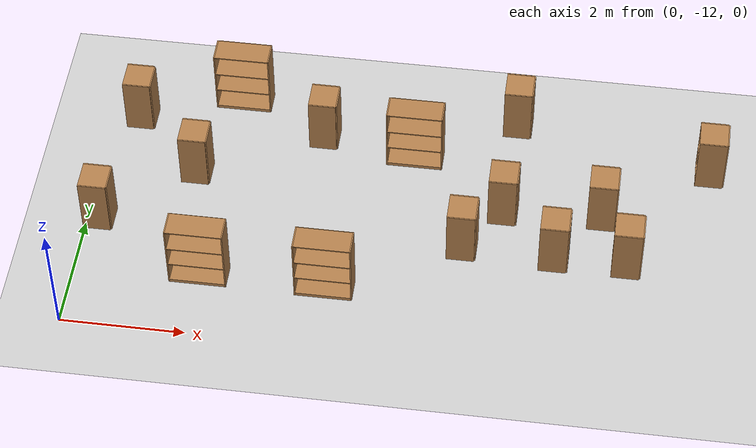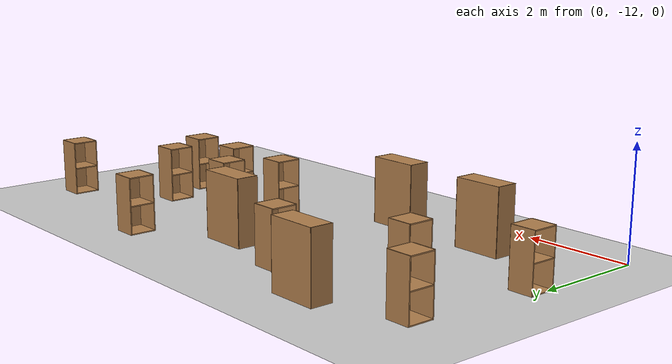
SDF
<sdf version="1.6">
 <world name="default">
  <model name="ground_plane">
   <static>1</static>
   <link name="link">
    <collision name="collision">
     <geometry><plane><normal>0 0 1</normal><size>100 100</size></plane></geometry>
     <surface><friction><ode><mu>100</mu><mu2>50</mu2></ode></friction></surface>
    </collision>
    <visual name="visual">
     <cast_shadows>0</cast_shadows>
     <geometry><plane><normal>0 0 1</normal><size>100 100</size></plane></geometry>
     <material>
      <script><uri>file://media/materials/scripts/gazebo.material</uri><name>Gazebo/Grey</name></script>
     </material>
    </visual>
   </link>
  </model>
  <model name="cabinet_3">
   <static>1</static>
   <link name="cabinet_bottom_plate">
    <inertial>
     <pose>0 0 -1 0 -0 0</pose>
     <inertia><ixx>2.05</ixx><ixy>0</ixy><ixz>0</ixz><iyy>2.05</iyy><iyz>0</iyz><izz>2.05</izz></inertia>
     <mass>25</mass>
    </inertial>
    <collision name="cabinet_bottom_plate_geom">
     <pose>0 0 0.01 0 -0 0</pose>
     <geometry><box><size>0.45 0.45 0.02</size></box></geometry>
    </collision>
    <visual name="cabinet_bottom_plate_geom_visual">
     <pose>0 0 0.01 0 -0 0</pose>
     <geometry><box><size>0.45 0.45 0.02</size></box></geometry>
     <material>
      <script><uri>file://media/materials/scripts/gazebo.material</uri><name>Gazebo/Wood</name></script>
     </material>
    </visual>
    <collision name="cabinet_bottom_plate_geom_cabinet_back_plate">
     <pose>0.235 0 0.51 0 -0 0</pose>
     <geometry><box><size>0.02 0.45 1.02</size></box></geometry>
    </collision>
    <visual name="cabinet_bottom_plate_geom_cabinet_back_plate_visual">
     <pose>0.235 0 0.51 0 -0 0</pose>
     <geometry><box><size>0.02 0.45 1.02</size></box></geometry>
     <material>
      <script><uri>file://media/materials/scripts/gazebo.material</uri><name>Gazebo/Wood</name></script>
     </material>
    </visual>
    <collision name="cabinet_bottom_plate_geom_cabinet_left_plate">
     <pose>0 0.235 0.51 0 -0 0</pose>
     <geometry><box><size>0.45 0.02 1.02</size></box></geometry>
    </collision>
    <visual name="cabinet_bottom_plate_geom_cabinet_left_plate_visual">
     <pose>0 0.235 0.51 0 -0 0</pose>
     <geometry><box><size>0.45 0.02 1.02</size></box></geometry>
     <material>
      <script><uri>file://media/materials/scripts/gazebo.material</uri><name>Gazebo/Wood</name></script>
     </material>
    </visual>
    <collision name="cabinet_bottom_plate_geom_cabinet_middle_plate">
     <pose>0 0 0.51 0 -0 0</pose>
     <geometry><box><size>0.45 0.45 0.02</size></box></geometry>
    </collision>
    <visual name="cabinet_bottom_plate_geom_cabinet_middle_plate_visual">
     <pose>0 0 0.51 0 -0 0</pose>
     <geometry><box><size>0.45 0.45 0.02</size></box></geometry>
     <material>
      <script><uri>file://media/materials/scripts/gazebo.material</uri><name>Gazebo/Wood</name></script>
     </material>
    </visual>
    <collision name="cabinet_bottom_plate_geom_cabinet_right_plate">
     <pose>0 -0.235 0.51 0 -0 0</pose>
     <geometry><box><size>0.45 0.02 1.02</size></box></geometry>
    </collision>
    <visual name="cabinet_bottom_plate_geom_cabinet_right_plate_visual">
     <pose>0 -0.235 0.51 0 -0 0</pose>
     <geometry><box><size>0.45 0.02 1.02</size></box></geometry>
     <material>
      <script><uri>file://media/materials/scripts/gazebo.material</uri><name>Gazebo/Wood</name></script>
     </material>
    </visual>
    <collision name="cabinet_bottom_plate_geom_cabinet_top_plate">
     <pose>0 0 1.01 0 -0 0</pose>
     <geometry><box><size>0.45 0.45 0.02</size></box></geometry>
    </collision>
    <visual name="cabinet_bottom_plate_geom_cabinet_top_plate_visual">
     <pose>0 0 1.01 0 -0 0</pose>
     <geometry><box><size>0.45 0.45 0.02</size></box></geometry>
     <material>
      <script><uri>file://media/materials/scripts/gazebo.material</uri><name>Gazebo/Wood</name></script>
     </material>
    </visual>
   </link>
   <pose>0.198754 -9.8582 0 0 -0 0</pose>
  </model>
  <model name="bookshelf_0">
   <static>1</static>
   <link name="link">
    <inertial><mass>1</mass></inertial>
    <collision name="back">
     <pose>0 0.005 0.6 0 -0 0</pose>
     <geometry><box><size>0.9 0.01 1.2</size></box></geometry>
    </collision>
    <visual name="visual1">
     <pose>0 0.005 0.6 0 -0 0</pose>
     <geometry><box><size>0.9 0.01 1.2</size></box></geometry>
     <material>
      <script><uri>file://media/materials/scripts/gazebo.material</uri><name>Gazebo/Wood</name></script>
     </material>
    </visual>
    <collision name="left_side">
     <pose>0.45 -0.195 0.6 0 -0 0</pose>
     <geometry><box><size>0.02 0.4 1.2</size></box></geometry>
    </collision>
    <visual name="visual2">
     <pose>0.45 -0.195 0.6 0 -0 0</pose>
     <geometry><box><size>0.02 0.4 1.2</size></box></geometry>
     <material>
      <script><uri>file://media/materials/scripts/gazebo.material</uri><name>Gazebo/Wood</name></script>
     </material>
    </visual>
    <collision name="right_side">
     <pose>-0.45 -0.195 0.6 0 -0 0</pose>
     <geometry><box><size>0.02 0.4 1.2</size></box></geometry>
    </collision>
    <visual name="visual3">
     <pose>-0.45 -0.195 0.6 0 -0 0</pose>
     <geometry><box><size>0.02 0.4 1.2</size></box></geometry>
     <material>
      <script><uri>file://media/materials/scripts/gazebo.material</uri><name>Gazebo/Wood</name></script>
     </material>
    </visual>
    <collision name="bottom">
     <pose>0 -0.195 0.03 0 -0 0</pose>
     <geometry><box><size>0.88 0.4 0.06</size></box></geometry>
    </collision>
    <visual name="visual4">
     <pose>0 -0.195 0.03 0 -0 0</pose>
     <geometry><box><size>0.88 0.4 0.06</size></box></geometry>
     <material>
      <script><uri>file://media/materials/scripts/gazebo.material</uri><name>Gazebo/Wood</name></script>
     </material>
    </visual>
    <collision name="top">
     <pose>0 -0.195 1.19 0 -0 0</pose>
     <geometry><box><size>0.88 0.4 0.02</size></box></geometry>
    </collision>
    <visual name="visual5">
     <pose>0 -0.195 1.19 0 -0 0</pose>
     <geometry><box><size>0.88 0.4 0.02</size></box></geometry>
     <material>
      <script><uri>file://media/materials/scripts/gazebo.material</uri><name>Gazebo/Wood</name></script>
     </material>
    </visual>
    <collision name="low_shelf">
     <pose>0 -0.195 0.43 0 -0 0</pose>
     <geometry><box><size>0.88 0.4 0.02</size></box></geometry>
    </collision>
    <visual name="visual6">
     <pose>0 -0.195 0.43 0 -0 0</pose>
     <geometry><box><size>0.88 0.4 0.02</size></box></geometry>
     <material>
      <script><uri>file://media/materials/scripts/gazebo.material</uri><name>Gazebo/Wood</name></script>
     </material>
    </visual>
    <collision name="high_shelf">
     <pose>0 -0.195 0.8 0 -0 0</pose>
     <geometry><box><size>0.88 0.4 0.02</size></box></geometry>
    </collision>
    <visual name="visual7">
     <pose>0 -0.195 0.8 0 -0 0</pose>
     <geometry><box><size>0.88 0.4 0.02</size></box></geometry>
     <material>
      <script><uri>file://media/materials/scripts/gazebo.material</uri><name>Gazebo/Wood</name></script>
     </material>
    </visual>
   </link>
   <pose>2.01191 -10.6265 0 0 -0 0</pose>
  </model>
  <model name="bookshelf_1">
   <static>1</static>
   <link name="link">
    <inertial><mass>1</mass></inertial>
    <collision name="back">
     <pose>0 0.005 0.6 0 -0 0</pose>
     <geometry><box><size>0.9 0.01 1.2</size></box></geometry>
    </collision>
    <visual name="visual1">
     <pose>0 0.005 0.6 0 -0 0</pose>
     <geometry><box><size>0.9 0.01 1.2</size></box></geometry>
     <material>
      <script><uri>file://media/materials/scripts/gazebo.material</uri><name>Gazebo/Wood</name></script>
     </material>
    </visual>
    <collision name="left_side">
     <pose>0.45 -0.195 0.6 0 -0 0</pose>
     <geometry><box><size>0.02 0.4 1.2</size></box></geometry>
    </collision>
    <visual name="visual2">
     <pose>0.45 -0.195 0.6 0 -0 0</pose>
     <geometry><box><size>0.02 0.4 1.2</size></box></geometry>
     <material>
      <script><uri>file://media/materials/scripts/gazebo.material</uri><name>Gazebo/Wood</name></script>
     </material>
    </visual>
    <collision name="right_side">
     <pose>-0.45 -0.195 0.6 0 -0 0</pose>
     <geometry><box><size>0.02 0.4 1.2</size></box></geometry>
    </collision>
    <visual name="visual3">
     <pose>-0.45 -0.195 0.6 0 -0 0</pose>
     <geometry><box><size>0.02 0.4 1.2</size></box></geometry>
     <material>
      <script><uri>file://media/materials/scripts/gazebo.material</uri><name>Gazebo/Wood</name></script>
     </material>
    </visual>
    <collision name="bottom">
     <pose>0 -0.195 0.03 0 -0 0</pose>
     <geometry><box><size>0.88 0.4 0.06</size></box></geometry>
    </collision>
    <visual name="visual4">
     <pose>0 -0.195 0.03 0 -0 0</pose>
     <geometry><box><size>0.88 0.4 0.06</size></box></geometry>
     <material>
      <script><uri>file://media/materials/scripts/gazebo.material</uri><name>Gazebo/Wood</name></script>
     </material>
    </visual>
    <collision name="top">
     <pose>0 -0.195 1.19 0 -0 0</pose>
     <geometry><box><size>0.88 0.4 0.02</size></box></geometry>
    </collision>
    <visual name="visual5">
     <pose>0 -0.195 1.19 0 -0 0</pose>
     <geometry><box><size>0.88 0.4 0.02</size></box></geometry>
     <material>
      <script><uri>file://media/materials/scripts/gazebo.material</uri><name>Gazebo/Wood</name></script>
     </material>
    </visual>
    <collision name="low_shelf">
     <pose>0 -0.195 0.43 0 -0 0</pose>
     <geometry><box><size>0.88 0.4 0.02</size></box></geometry>
    </collision>
    <visual name="visual6">
     <pose>0 -0.195 0.43 0 -0 0</pose>
     <geometry><box><size>0.88 0.4 0.02</size></box></geometry>
     <material>
      <script><uri>file://media/materials/scripts/gazebo.material</uri><name>Gazebo/Wood</name></script>
     </material>
    </visual>
    <collision name="high_shelf">
     <pose>0 -0.195 0.8 0 -0 0</pose>
     <geometry><box><size>0.88 0.4 0.02</size></box></geometry>
    </collision>
    <visual name="visual7">
     <pose>0 -0.195 0.8 0 -0 0</pose>
     <geometry><box><size>0.88 0.4 0.02</size></box></geometry>
     <material>
      <script><uri>file://media/materials/scripts/gazebo.material</uri><name>Gazebo/Wood</name></script>
     </material>
    </visual>
   </link>
   <pose>4.02228 -10.6454 0 0 -0 0</pose>
  </model>
  <model name="cabinet_4">
   <static>1</static>
   <link name="cabinet_bottom_plate">
    <inertial>
     <pose>0 0 -1 0 -0 0</pose>
     <inertia><ixx>2.05</ixx><ixy>0</ixy><ixz>0</ixz><iyy>2.05</iyy><iyz>0</iyz><izz>2.05</izz></inertia>
     <mass>25</mass>
    </inertial>
    <collision name="cabinet_bottom_plate_geom">
     <pose>0 0 0.01 0 -0 0</pose>
     <geometry><box><size>0.45 0.45 0.02</size></box></geometry>
    </collision>
    <visual name="cabinet_bottom_plate_geom_visual">
     <pose>0 0 0.01 0 -0 0</pose>
     <geometry><box><size>0.45 0.45 0.02</size></box></geometry>
     <material>
      <script><uri>file://media/materials/scripts/gazebo.material</uri><name>Gazebo/Wood</name></script>
     </material>
    </visual>
    <collision name="cabinet_bottom_plate_geom_cabinet_back_plate">
     <pose>0.235 0 0.51 0 -0 0</pose>
     <geometry><box><size>0.02 0.45 1.02</size></box></geometry>
    </collision>
    <visual name="cabinet_bottom_plate_geom_cabinet_back_plate_visual">
     <pose>0.235 0 0.51 0 -0 0</pose>
     <geometry><box><size>0.02 0.45 1.02</size></box></geometry>
     <material>
      <script><uri>file://media/materials/scripts/gazebo.material</uri><name>Gazebo/Wood</name></script>
     </material>
    </visual>
    <collision name="cabinet_bottom_plate_geom_cabinet_left_plate">
     <pose>0 0.235 0.51 0 -0 0</pose>
     <geometry><box><size>0.45 0.02 1.02</size></box></geometry>
    </collision>
    <visual name="cabinet_bottom_plate_geom_cabinet_left_plate_visual">
     <pose>0 0.235 0.51 0 -0 0</pose>
     <geometry><box><size>0.45 0.02 1.02</size></box></geometry>
     <material>
      <script><uri>file://media/materials/scripts/gazebo.material</uri><name>Gazebo/Wood</name></script>
     </material>
    </visual>
    <collision name="cabinet_bottom_plate_geom_cabinet_middle_plate">
     <pose>0 0 0.51 0 -0 0</pose>
     <geometry><box><size>0.45 0.45 0.02</size></box></geometry>
    </collision>
    <visual name="cabinet_bottom_plate_geom_cabinet_middle_plate_visual">
     <pose>0 0 0.51 0 -0 0</pose>
     <geometry><box><size>0.45 0.45 0.02</size></box></geometry>
     <material>
      <script><uri>file://media/materials/scripts/gazebo.material</uri><name>Gazebo/Wood</name></script>
     </material>
    </visual>
    <collision name="cabinet_bottom_plate_geom_cabinet_right_plate">
     <pose>0 -0.235 0.51 0 -0 0</pose>
     <geometry><box><size>0.45 0.02 1.02</size></box></geometry>
    </collision>
    <visual name="cabinet_bottom_plate_geom_cabinet_right_plate_visual">
     <pose>0 -0.235 0.51 0 -0 0</pose>
     <geometry><box><size>0.45 0.02 1.02</size></box></geometry>
     <material>
      <script><uri>file://media/materials/scripts/gazebo.material</uri><name>Gazebo/Wood</name></script>
     </material>
    </visual>
    <collision name="cabinet_bottom_plate_geom_cabinet_top_plate">
     <pose>0 0 1.01 0 -0 0</pose>
     <geometry><box><size>0.45 0.45 0.02</size></box></geometry>
    </collision>
    <visual name="cabinet_bottom_plate_geom_cabinet_top_plate_visual">
     <pose>0 0 1.01 0 -0 0</pose>
     <geometry><box><size>0.45 0.45 0.02</size></box></geometry>
     <material>
      <script><uri>file://media/materials/scripts/gazebo.material</uri><name>Gazebo/Wood</name></script>
     </material>
    </visual>
   </link>
   <pose>6.07432 -9.76061 0 0 -0 0</pose>
  </model>
  <model name="cabinet_5">
   <static>1</static>
   <link name="cabinet_bottom_plate">
    <inertial>
     <pose>0 0 -1 0 -0 0</pose>
     <inertia><ixx>2.05</ixx><ixy>0</ixy><ixz>0</ixz><iyy>2.05</iyy><iyz>0</iyz><izz>2.05</izz></inertia>
     <mass>25</mass>
    </inertial>
    <collision name="cabinet_bottom_plate_geom">
     <pose>0 0 0.01 0 -0 0</pose>
     <geometry><box><size>0.45 0.45 0.02</size></box></geometry>
    </collision>
    <visual name="cabinet_bottom_plate_geom_visual">
     <pose>0 0 0.01 0 -0 0</pose>
     <geometry><box><size>0.45 0.45 0.02</size></box></geometry>
     <material>
      <script><uri>file://media/materials/scripts/gazebo.material</uri><name>Gazebo/Wood</name></script>
     </material>
    </visual>
    <collision name="cabinet_bottom_plate_geom_cabinet_back_plate">
     <pose>0.235 0 0.51 0 -0 0</pose>
     <geometry><box><size>0.02 0.45 1.02</size></box></geometry>
    </collision>
    <visual name="cabinet_bottom_plate_geom_cabinet_back_plate_visual">
     <pose>0.235 0 0.51 0 -0 0</pose>
     <geometry><box><size>0.02 0.45 1.02</size></box></geometry>
     <material>
      <script><uri>file://media/materials/scripts/gazebo.material</uri><name>Gazebo/Wood</name></script>
     </material>
    </visual>
    <collision name="cabinet_bottom_plate_geom_cabinet_left_plate">
     <pose>0 0.235 0.51 0 -0 0</pose>
     <geometry><box><size>0.45 0.02 1.02</size></box></geometry>
    </collision>
    <visual name="cabinet_bottom_plate_geom_cabinet_left_plate_visual">
     <pose>0 0.235 0.51 0 -0 0</pose>
     <geometry><box><size>0.45 0.02 1.02</size></box></geometry>
     <material>
      <script><uri>file://media/materials/scripts/gazebo.material</uri><name>Gazebo/Wood</name></script>
     </material>
    </visual>
    <collision name="cabinet_bottom_plate_geom_cabinet_middle_plate">
     <pose>0 0 0.51 0 -0 0</pose>
     <geometry><box><size>0.45 0.45 0.02</size></box></geometry>
    </collision>
    <visual name="cabinet_bottom_plate_geom_cabinet_middle_plate_visual">
     <pose>0 0 0.51 0 -0 0</pose>
     <geometry><box><size>0.45 0.45 0.02</size></box></geometry>
     <material>
      <script><uri>file://media/materials/scripts/gazebo.material</uri><name>Gazebo/Wood</name></script>
     </material>
    </visual>
    <collision name="cabinet_bottom_plate_geom_cabinet_right_plate">
     <pose>0 -0.235 0.51 0 -0 0</pose>
     <geometry><box><size>0.45 0.02 1.02</size></box></geometry>
    </collision>
    <visual name="cabinet_bottom_plate_geom_cabinet_right_plate_visual">
     <pose>0 -0.235 0.51 0 -0 0</pose>
     <geometry><box><size>0.45 0.02 1.02</size></box></geometry>
     <material>
      <script><uri>file://media/materials/scripts/gazebo.material</uri><name>Gazebo/Wood</name></script>
     </material>
    </visual>
    <collision name="cabinet_bottom_plate_geom_cabinet_top_plate">
     <pose>0 0 1.01 0 -0 0</pose>
     <geometry><box><size>0.45 0.45 0.02</size></box></geometry>
    </collision>
    <visual name="cabinet_bottom_plate_geom_cabinet_top_plate_visual">
     <pose>0 0 1.01 0 -0 0</pose>
     <geometry><box><size>0.45 0.45 0.02</size></box></geometry>
     <material>
      <script><uri>file://media/materials/scripts/gazebo.material</uri><name>Gazebo/Wood</name></script>
     </material>
    </visual>
   </link>
   <pose>7.54723 -9.811 0 0 -0 0</pose>
  </model>
  <model name="cabinet_6">
   <static>1</static>
   <link name="cabinet_bottom_plate">
    <inertial>
     <pose>0 0 -1 0 -0 0</pose>
     <inertia><ixx>2.05</ixx><ixy>0</ixy><ixz>0</ixz><iyy>2.05</iyy><iyz>0</iyz><izz>2.05</izz></inertia>
     <mass>25</mass>
    </inertial>
    <collision name="cabinet_bottom_plate_geom">
     <pose>0 0 0.01 0 -0 0</pose>
     <geometry><box><size>0.45 0.45 0.02</size></box></geometry>
    </collision>
    <visual name="cabinet_bottom_plate_geom_visual">
     <pose>0 0 0.01 0 -0 0</pose>
     <geometry><box><size>0.45 0.45 0.02</size></box></geometry>
     <material>
      <script><uri>file://media/materials/scripts/gazebo.material</uri><name>Gazebo/Wood</name></script>
     </material>
    </visual>
    <collision name="cabinet_bottom_plate_geom_cabinet_back_plate">
     <pose>0.235 0 0.51 0 -0 0</pose>
     <geometry><box><size>0.02 0.45 1.02</size></box></geometry>
    </collision>
    <visual name="cabinet_bottom_plate_geom_cabinet_back_plate_visual">
     <pose>0.235 0 0.51 0 -0 0</pose>
     <geometry><box><size>0.02 0.45 1.02</size></box></geometry>
     <material>
      <script><uri>file://media/materials/scripts/gazebo.material</uri><name>Gazebo/Wood</name></script>
     </material>
    </visual>
    <collision name="cabinet_bottom_plate_geom_cabinet_left_plate">
     <pose>0 0.235 0.51 0 -0 0</pose>
     <geometry><box><size>0.45 0.02 1.02</size></box></geometry>
    </collision>
    <visual name="cabinet_bottom_plate_geom_cabinet_left_plate_visual">
     <pose>0 0.235 0.51 0 -0 0</pose>
     <geometry><box><size>0.45 0.02 1.02</size></box></geometry>
     <material>
      <script><uri>file://media/materials/scripts/gazebo.material</uri><name>Gazebo/Wood</name></script>
     </material>
    </visual>
    <collision name="cabinet_bottom_plate_geom_cabinet_middle_plate">
     <pose>0 0 0.51 0 -0 0</pose>
     <geometry><box><size>0.45 0.45 0.02</size></box></geometry>
    </collision>
    <visual name="cabinet_bottom_plate_geom_cabinet_middle_plate_visual">
     <pose>0 0 0.51 0 -0 0</pose>
     <geometry><box><size>0.45 0.45 0.02</size></box></geometry>
     <material>
      <script><uri>file://media/materials/scripts/gazebo.material</uri><name>Gazebo/Wood</name></script>
     </material>
    </visual>
    <collision name="cabinet_bottom_plate_geom_cabinet_right_plate">
     <pose>0 -0.235 0.51 0 -0 0</pose>
     <geometry><box><size>0.45 0.02 1.02</size></box></geometry>
    </collision>
    <visual name="cabinet_bottom_plate_geom_cabinet_right_plate_visual">
     <pose>0 -0.235 0.51 0 -0 0</pose>
     <geometry><box><size>0.45 0.02 1.02</size></box></geometry>
     <material>
      <script><uri>file://media/materials/scripts/gazebo.material</uri><name>Gazebo/Wood</name></script>
     </material>
    </visual>
    <collision name="cabinet_bottom_plate_geom_cabinet_top_plate">
     <pose>0 0 1.01 0 -0 0</pose>
     <geometry><box><size>0.45 0.45 0.02</size></box></geometry>
    </collision>
    <visual name="cabinet_bottom_plate_geom_cabinet_top_plate_visual">
     <pose>0 0 1.01 0 -0 0</pose>
     <geometry><box><size>0.45 0.45 0.02</size></box></geometry>
     <material>
      <script><uri>file://media/materials/scripts/gazebo.material</uri><name>Gazebo/Wood</name></script>
     </material>
    </visual>
   </link>
   <pose>8.70569 -9.80026 0 0 -0 0</pose>
  </model>
  <model name="cabinet_10">
   <static>1</static>
   <link name="cabinet_bottom_plate">
    <inertial>
     <pose>0 0 -1 0 -0 0</pose>
     <inertia><ixx>2.05</ixx><ixy>0</ixy><ixz>0</ixz><iyy>2.05</iyy><iyz>0</iyz><izz>2.05</izz></inertia>
     <mass>25</mass>
    </inertial>
    <collision name="cabinet_bottom_plate_geom">
     <pose>0 0 0.01 0 -0 0</pose>
     <geometry><box><size>0.45 0.45 0.02</size></box></geometry>
    </collision>
    <visual name="cabinet_bottom_plate_geom_visual">
     <pose>0 0 0.01 0 -0 0</pose>
     <geometry><box><size>0.45 0.45 0.02</size></box></geometry>
     <material>
      <script><uri>file://media/materials/scripts/gazebo.material</uri><name>Gazebo/Wood</name></script>
     </material>
    </visual>
    <collision name="cabinet_bottom_plate_geom_cabinet_back_plate">
     <pose>0.235 0 0.51 0 -0 0</pose>
     <geometry><box><size>0.02 0.45 1.02</size></box></geometry>
    </collision>
    <visual name="cabinet_bottom_plate_geom_cabinet_back_plate_visual">
     <pose>0.235 0 0.51 0 -0 0</pose>
     <geometry><box><size>0.02 0.45 1.02</size></box></geometry>
     <material>
      <script><uri>file://media/materials/scripts/gazebo.material</uri><name>Gazebo/Wood</name></script>
     </material>
    </visual>
    <collision name="cabinet_bottom_plate_geom_cabinet_left_plate">
     <pose>0 0.235 0.51 0 -0 0</pose>
     <geometry><box><size>0.45 0.02 1.02</size></box></geometry>
    </collision>
    <visual name="cabinet_bottom_plate_geom_cabinet_left_plate_visual">
     <pose>0 0.235 0.51 0 -0 0</pose>
     <geometry><box><size>0.45 0.02 1.02</size></box></geometry>
     <material>
      <script><uri>file://media/materials/scripts/gazebo.material</uri><name>Gazebo/Wood</name></script>
     </material>
    </visual>
    <collision name="cabinet_bottom_plate_geom_cabinet_middle_plate">
     <pose>0 0 0.51 0 -0 0</pose>
     <geometry><box><size>0.45 0.45 0.02</size></box></geometry>
    </collision>
    <visual name="cabinet_bottom_plate_geom_cabinet_middle_plate_visual">
     <pose>0 0 0.51 0 -0 0</pose>
     <geometry><box><size>0.45 0.45 0.02</size></box></geometry>
     <material>
      <script><uri>file://media/materials/scripts/gazebo.material</uri><name>Gazebo/Wood</name></script>
     </material>
    </visual>
    <collision name="cabinet_bottom_plate_geom_cabinet_right_plate">
     <pose>0 -0.235 0.51 0 -0 0</pose>
     <geometry><box><size>0.45 0.02 1.02</size></box></geometry>
    </collision>
    <visual name="cabinet_bottom_plate_geom_cabinet_right_plate_visual">
     <pose>0 -0.235 0.51 0 -0 0</pose>
     <geometry><box><size>0.45 0.02 1.02</size></box></geometry>
     <material>
      <script><uri>file://media/materials/scripts/gazebo.material</uri><name>Gazebo/Wood</name></script>
     </material>
    </visual>
    <collision name="cabinet_bottom_plate_geom_cabinet_top_plate">
     <pose>0 0 1.01 0 -0 0</pose>
     <geometry><box><size>0.45 0.45 0.02</size></box></geometry>
    </collision>
    <visual name="cabinet_bottom_plate_geom_cabinet_top_plate_visual">
     <pose>0 0 1.01 0 -0 0</pose>
     <geometry><box><size>0.45 0.45 0.02</size></box></geometry>
     <material>
      <script><uri>file://media/materials/scripts/gazebo.material</uri><name>Gazebo/Wood</name></script>
     </material>
    </visual>
   </link>
   <pose>0.461263 -7.61278 0 0 -0 0</pose>
  </model>
  <model name="cabinet_11">
   <static>1</static>
   <link name="cabinet_bottom_plate">
    <inertial>
     <pose>0 0 -1 0 -0 0</pose>
     <inertia><ixx>2.05</ixx><ixy>0</ixy><ixz>0</ixz><iyy>2.05</iyy><iyz>0</iyz><izz>2.05</izz></inertia>
     <mass>25</mass>
    </inertial>
    <collision name="cabinet_bottom_plate_geom">
     <pose>0 0 0.01 0 -0 0</pose>
     <geometry><box><size>0.45 0.45 0.02</size></box></geometry>
    </collision>
    <visual name="cabinet_bottom_plate_geom_visual">
     <pose>0 0 0.01 0 -0 0</pose>
     <geometry><box><size>0.45 0.45 0.02</size></box></geometry>
     <material>
      <script><uri>file://media/materials/scripts/gazebo.material</uri><name>Gazebo/Wood</name></script>
     </material>
    </visual>
    <collision name="cabinet_bottom_plate_geom_cabinet_back_plate">
     <pose>0.235 0 0.51 0 -0 0</pose>
     <geometry><box><size>0.02 0.45 1.02</size></box></geometry>
    </collision>
    <visual name="cabinet_bottom_plate_geom_cabinet_back_plate_visual">
     <pose>0.235 0 0.51 0 -0 0</pose>
     <geometry><box><size>0.02 0.45 1.02</size></box></geometry>
     <material>
      <script><uri>file://media/materials/scripts/gazebo.material</uri><name>Gazebo/Wood</name></script>
     </material>
    </visual>
    <collision name="cabinet_bottom_plate_geom_cabinet_left_plate">
     <pose>0 0.235 0.51 0 -0 0</pose>
     <geometry><box><size>0.45 0.02 1.02</size></box></geometry>
    </collision>
    <visual name="cabinet_bottom_plate_geom_cabinet_left_plate_visual">
     <pose>0 0.235 0.51 0 -0 0</pose>
     <geometry><box><size>0.45 0.02 1.02</size></box></geometry>
     <material>
      <script><uri>file://media/materials/scripts/gazebo.material</uri><name>Gazebo/Wood</name></script>
     </material>
    </visual>
    <collision name="cabinet_bottom_plate_geom_cabinet_middle_plate">
     <pose>0 0 0.51 0 -0 0</pose>
     <geometry><box><size>0.45 0.45 0.02</size></box></geometry>
    </collision>
    <visual name="cabinet_bottom_plate_geom_cabinet_middle_plate_visual">
     <pose>0 0 0.51 0 -0 0</pose>
     <geometry><box><size>0.45 0.45 0.02</size></box></geometry>
     <material>
      <script><uri>file://media/materials/scripts/gazebo.material</uri><name>Gazebo/Wood</name></script>
     </material>
    </visual>
    <collision name="cabinet_bottom_plate_geom_cabinet_right_plate">
     <pose>0 -0.235 0.51 0 -0 0</pose>
     <geometry><box><size>0.45 0.02 1.02</size></box></geometry>
    </collision>
    <visual name="cabinet_bottom_plate_geom_cabinet_right_plate_visual">
     <pose>0 -0.235 0.51 0 -0 0</pose>
     <geometry><box><size>0.45 0.02 1.02</size></box></geometry>
     <material>
      <script><uri>file://media/materials/scripts/gazebo.material</uri><name>Gazebo/Wood</name></script>
     </material>
    </visual>
    <collision name="cabinet_bottom_plate_geom_cabinet_top_plate">
     <pose>0 0 1.01 0 -0 0</pose>
     <geometry><box><size>0.45 0.45 0.02</size></box></geometry>
    </collision>
    <visual name="cabinet_bottom_plate_geom_cabinet_top_plate_visual">
     <pose>0 0 1.01 0 -0 0</pose>
     <geometry><box><size>0.45 0.45 0.02</size></box></geometry>
     <material>
      <script><uri>file://media/materials/scripts/gazebo.material</uri><name>Gazebo/Wood</name></script>
     </material>
    </visual>
   </link>
   <pose>1.58698 -8.69987 0 0 -0 0</pose>
  </model>
  <model name="cabinet_12">
   <static>1</static>
   <link name="cabinet_bottom_plate">
    <inertial>
     <pose>0 0 -1 0 -0 0</pose>
     <inertia><ixx>2.05</ixx><ixy>0</ixy><ixz>0</ixz><iyy>2.05</iyy><iyz>0</iyz><izz>2.05</izz></inertia>
     <mass>25</mass>
    </inertial>
    <collision name="cabinet_bottom_plate_geom">
     <pose>0 0 0.01 0 -0 0</pose>
     <geometry><box><size>0.45 0.45 0.02</size></box></geometry>
    </collision>
    <visual name="cabinet_bottom_plate_geom_visual">
     <pose>0 0 0.01 0 -0 0</pose>
     <geometry><box><size>0.45 0.45 0.02</size></box></geometry>
     <material>
      <script><uri>file://media/materials/scripts/gazebo.material</uri><name>Gazebo/Wood</name></script>
     </material>
    </visual>
    <collision name="cabinet_bottom_plate_geom_cabinet_back_plate">
     <pose>0.235 0 0.51 0 -0 0</pose>
     <geometry><box><size>0.02 0.45 1.02</size></box></geometry>
    </collision>
    <visual name="cabinet_bottom_plate_geom_cabinet_back_plate_visual">
     <pose>0.235 0 0.51 0 -0 0</pose>
     <geometry><box><size>0.02 0.45 1.02</size></box></geometry>
     <material>
      <script><uri>file://media/materials/scripts/gazebo.material</uri><name>Gazebo/Wood</name></script>
     </material>
    </visual>
    <collision name="cabinet_bottom_plate_geom_cabinet_left_plate">
     <pose>0 0.235 0.51 0 -0 0</pose>
     <geometry><box><size>0.45 0.02 1.02</size></box></geometry>
    </collision>
    <visual name="cabinet_bottom_plate_geom_cabinet_left_plate_visual">
     <pose>0 0.235 0.51 0 -0 0</pose>
     <geometry><box><size>0.45 0.02 1.02</size></box></geometry>
     <material>
      <script><uri>file://media/materials/scripts/gazebo.material</uri><name>Gazebo/Wood</name></script>
     </material>
    </visual>
    <collision name="cabinet_bottom_plate_geom_cabinet_middle_plate">
     <pose>0 0 0.51 0 -0 0</pose>
     <geometry><box><size>0.45 0.45 0.02</size></box></geometry>
    </collision>
    <visual name="cabinet_bottom_plate_geom_cabinet_middle_plate_visual">
     <pose>0 0 0.51 0 -0 0</pose>
     <geometry><box><size>0.45 0.45 0.02</size></box></geometry>
     <material>
      <script><uri>file://media/materials/scripts/gazebo.material</uri><name>Gazebo/Wood</name></script>
     </material>
    </visual>
    <collision name="cabinet_bottom_plate_geom_cabinet_right_plate">
     <pose>0 -0.235 0.51 0 -0 0</pose>
     <geometry><box><size>0.45 0.02 1.02</size></box></geometry>
    </collision>
    <visual name="cabinet_bottom_plate_geom_cabinet_right_plate_visual">
     <pose>0 -0.235 0.51 0 -0 0</pose>
     <geometry><box><size>0.45 0.02 1.02</size></box></geometry>
     <material>
      <script><uri>file://media/materials/scripts/gazebo.material</uri><name>Gazebo/Wood</name></script>
     </material>
    </visual>
    <collision name="cabinet_bottom_plate_geom_cabinet_top_plate">
     <pose>0 0 1.01 0 -0 0</pose>
     <geometry><box><size>0.45 0.45 0.02</size></box></geometry>
    </collision>
    <visual name="cabinet_bottom_plate_geom_cabinet_top_plate_visual">
     <pose>0 0 1.01 0 -0 0</pose>
     <geometry><box><size>0.45 0.45 0.02</size></box></geometry>
     <material>
      <script><uri>file://media/materials/scripts/gazebo.material</uri><name>Gazebo/Wood</name></script>
     </material>
    </visual>
   </link>
   <pose>3.55788 -7.67552 0 0 -0 0</pose>
  </model>
  <model name="bookshelf_2">
   <static>1</static>
   <link name="link">
    <inertial><mass>1</mass></inertial>
    <collision name="back">
     <pose>0 0.005 0.6 0 -0 0</pose>
     <geometry><box><size>0.9 0.01 1.2</size></box></geometry>
    </collision>
    <visual name="visual1">
     <pose>0 0.005 0.6 0 -0 0</pose>
     <geometry><box><size>0.9 0.01 1.2</size></box></geometry>
     <material>
      <script><uri>file://media/materials/scripts/gazebo.material</uri><name>Gazebo/Wood</name></script>
     </material>
    </visual>
    <collision name="left_side">
     <pose>0.45 -0.195 0.6 0 -0 0</pose>
     <geometry><box><size>0.02 0.4 1.2</size></box></geometry>
    </collision>
    <visual name="visual2">
     <pose>0.45 -0.195 0.6 0 -0 0</pose>
     <geometry><box><size>0.02 0.4 1.2</size></box></geometry>
     <material>
      <script><uri>file://media/materials/scripts/gazebo.material</uri><name>Gazebo/Wood</name></script>
     </material>
    </visual>
    <collision name="right_side">
     <pose>-0.45 -0.195 0.6 0 -0 0</pose>
     <geometry><box><size>0.02 0.4 1.2</size></box></geometry>
    </collision>
    <visual name="visual3">
     <pose>-0.45 -0.195 0.6 0 -0 0</pose>
     <geometry><box><size>0.02 0.4 1.2</size></box></geometry>
     <material>
      <script><uri>file://media/materials/scripts/gazebo.material</uri><name>Gazebo/Wood</name></script>
     </material>
    </visual>
    <collision name="bottom">
     <pose>0 -0.195 0.03 0 -0 0</pose>
     <geometry><box><size>0.88 0.4 0.06</size></box></geometry>
    </collision>
    <visual name="visual4">
     <pose>0 -0.195 0.03 0 -0 0</pose>
     <geometry><box><size>0.88 0.4 0.06</size></box></geometry>
     <material>
      <script><uri>file://media/materials/scripts/gazebo.material</uri><name>Gazebo/Wood</name></script>
     </material>
    </visual>
    <collision name="top">
     <pose>0 -0.195 1.19 0 -0 0</pose>
     <geometry><box><size>0.88 0.4 0.02</size></box></geometry>
    </collision>
    <visual name="visual5">
     <pose>0 -0.195 1.19 0 -0 0</pose>
     <geometry><box><size>0.88 0.4 0.02</size></box></geometry>
     <material>
      <script><uri>file://media/materials/scripts/gazebo.material</uri><name>Gazebo/Wood</name></script>
     </material>
    </visual>
    <collision name="low_shelf">
     <pose>0 -0.195 0.43 0 -0 0</pose>
     <geometry><box><size>0.88 0.4 0.02</size></box></geometry>
    </collision>
    <visual name="visual6">
     <pose>0 -0.195 0.43 0 -0 0</pose>
     <geometry><box><size>0.88 0.4 0.02</size></box></geometry>
     <material>
      <script><uri>file://media/materials/scripts/gazebo.material</uri><name>Gazebo/Wood</name></script>
     </material>
    </visual>
    <collision name="high_shelf">
     <pose>0 -0.195 0.8 0 -0 0</pose>
     <geometry><box><size>0.88 0.4 0.02</size></box></geometry>
    </collision>
    <visual name="visual7">
     <pose>0 -0.195 0.8 0 -0 0</pose>
     <geometry><box><size>0.88 0.4 0.02</size></box></geometry>
     <material>
      <script><uri>file://media/materials/scripts/gazebo.material</uri><name>Gazebo/Wood</name></script>
     </material>
    </visual>
   </link>
   <pose>5.10689 -7.74835 0 0 -0 0</pose>
  </model>
  <model name="cabinet_13">
   <static>1</static>
   <link name="cabinet_bottom_plate">
    <inertial>
     <pose>0 0 -1 0 -0 0</pose>
     <inertia><ixx>2.05</ixx><ixy>0</ixy><ixz>0</ixz><iyy>2.05</iyy><iyz>0</iyz><izz>2.05</izz></inertia>
     <mass>25</mass>
    </inertial>
    <collision name="cabinet_bottom_plate_geom">
     <pose>0 0 0.01 0 -0 0</pose>
     <geometry><box><size>0.45 0.45 0.02</size></box></geometry>
    </collision>
    <visual name="cabinet_bottom_plate_geom_visual">
     <pose>0 0 0.01 0 -0 0</pose>
     <geometry><box><size>0.45 0.45 0.02</size></box></geometry>
     <material>
      <script><uri>file://media/materials/scripts/gazebo.material</uri><name>Gazebo/Wood</name></script>
     </material>
    </visual>
    <collision name="cabinet_bottom_plate_geom_cabinet_back_plate">
     <pose>0.235 0 0.51 0 -0 0</pose>
     <geometry><box><size>0.02 0.45 1.02</size></box></geometry>
    </collision>
    <visual name="cabinet_bottom_plate_geom_cabinet_back_plate_visual">
     <pose>0.235 0 0.51 0 -0 0</pose>
     <geometry><box><size>0.02 0.45 1.02</size></box></geometry>
     <material>
      <script><uri>file://media/materials/scripts/gazebo.material</uri><name>Gazebo/Wood</name></script>
     </material>
    </visual>
    <collision name="cabinet_bottom_plate_geom_cabinet_left_plate">
     <pose>0 0.235 0.51 0 -0 0</pose>
     <geometry><box><size>0.45 0.02 1.02</size></box></geometry>
    </collision>
    <visual name="cabinet_bottom_plate_geom_cabinet_left_plate_visual">
     <pose>0 0.235 0.51 0 -0 0</pose>
     <geometry><box><size>0.45 0.02 1.02</size></box></geometry>
     <material>
      <script><uri>file://media/materials/scripts/gazebo.material</uri><name>Gazebo/Wood</name></script>
     </material>
    </visual>
    <collision name="cabinet_bottom_plate_geom_cabinet_middle_plate">
     <pose>0 0 0.51 0 -0 0</pose>
     <geometry><box><size>0.45 0.45 0.02</size></box></geometry>
    </collision>
    <visual name="cabinet_bottom_plate_geom_cabinet_middle_plate_visual">
     <pose>0 0 0.51 0 -0 0</pose>
     <geometry><box><size>0.45 0.45 0.02</size></box></geometry>
     <material>
      <script><uri>file://media/materials/scripts/gazebo.material</uri><name>Gazebo/Wood</name></script>
     </material>
    </visual>
    <collision name="cabinet_bottom_plate_geom_cabinet_right_plate">
     <pose>0 -0.235 0.51 0 -0 0</pose>
     <geometry><box><size>0.45 0.02 1.02</size></box></geometry>
    </collision>
    <visual name="cabinet_bottom_plate_geom_cabinet_right_plate_visual">
     <pose>0 -0.235 0.51 0 -0 0</pose>
     <geometry><box><size>0.45 0.02 1.02</size></box></geometry>
     <material>
      <script><uri>file://media/materials/scripts/gazebo.material</uri><name>Gazebo/Wood</name></script>
     </material>
    </visual>
    <collision name="cabinet_bottom_plate_geom_cabinet_top_plate">
     <pose>0 0 1.01 0 -0 0</pose>
     <geometry><box><size>0.45 0.45 0.02</size></box></geometry>
    </collision>
    <visual name="cabinet_bottom_plate_geom_cabinet_top_plate_visual">
     <pose>0 0 1.01 0 -0 0</pose>
     <geometry><box><size>0.45 0.45 0.02</size></box></geometry>
     <material>
      <script><uri>file://media/materials/scripts/gazebo.material</uri><name>Gazebo/Wood</name></script>
     </material>
    </visual>
   </link>
   <pose>6.65023 -8.94469 0 0 -0 0</pose>
  </model>
  <model name="cabinet_14">
   <static>1</static>
   <link name="cabinet_bottom_plate">
    <inertial>
     <pose>0 0 -1 0 -0 0</pose>
     <inertia><ixx>2.05</ixx><ixy>0</ixy><ixz>0</ixz><iyy>2.05</iyy><iyz>0</iyz><izz>2.05</izz></inertia>
     <mass>25</mass>
    </inertial>
    <collision name="cabinet_bottom_plate_geom">
     <pose>0 0 0.01 0 -0 0</pose>
     <geometry><box><size>0.45 0.45 0.02</size></box></geometry>
    </collision>
    <visual name="cabinet_bottom_plate_geom_visual">
     <pose>0 0 0.01 0 -0 0</pose>
     <geometry><box><size>0.45 0.45 0.02</size></box></geometry>
     <material>
      <script><uri>file://media/materials/scripts/gazebo.material</uri><name>Gazebo/Wood</name></script>
     </material>
    </visual>
    <collision name="cabinet_bottom_plate_geom_cabinet_back_plate">
     <pose>0.235 0 0.51 0 -0 0</pose>
     <geometry><box><size>0.02 0.45 1.02</size></box></geometry>
    </collision>
    <visual name="cabinet_bottom_plate_geom_cabinet_back_plate_visual">
     <pose>0.235 0 0.51 0 -0 0</pose>
     <geometry><box><size>0.02 0.45 1.02</size></box></geometry>
     <material>
      <script><uri>file://media/materials/scripts/gazebo.material</uri><name>Gazebo/Wood</name></script>
     </material>
    </visual>
    <collision name="cabinet_bottom_plate_geom_cabinet_left_plate">
     <pose>0 0.235 0.51 0 -0 0</pose>
     <geometry><box><size>0.45 0.02 1.02</size></box></geometry>
    </collision>
    <visual name="cabinet_bottom_plate_geom_cabinet_left_plate_visual">
     <pose>0 0.235 0.51 0 -0 0</pose>
     <geometry><box><size>0.45 0.02 1.02</size></box></geometry>
     <material>
      <script><uri>file://media/materials/scripts/gazebo.material</uri><name>Gazebo/Wood</name></script>
     </material>
    </visual>
    <collision name="cabinet_bottom_plate_geom_cabinet_middle_plate">
     <pose>0 0 0.51 0 -0 0</pose>
     <geometry><box><size>0.45 0.45 0.02</size></box></geometry>
    </collision>
    <visual name="cabinet_bottom_plate_geom_cabinet_middle_plate_visual">
     <pose>0 0 0.51 0 -0 0</pose>
     <geometry><box><size>0.45 0.45 0.02</size></box></geometry>
     <material>
      <script><uri>file://media/materials/scripts/gazebo.material</uri><name>Gazebo/Wood</name></script>
     </material>
    </visual>
    <collision name="cabinet_bottom_plate_geom_cabinet_right_plate">
     <pose>0 -0.235 0.51 0 -0 0</pose>
     <geometry><box><size>0.45 0.02 1.02</size></box></geometry>
    </collision>
    <visual name="cabinet_bottom_plate_geom_cabinet_right_plate_visual">
     <pose>0 -0.235 0.51 0 -0 0</pose>
     <geometry><box><size>0.45 0.02 1.02</size></box></geometry>
     <material>
      <script><uri>file://media/materials/scripts/gazebo.material</uri><name>Gazebo/Wood</name></script>
     </material>
    </visual>
    <collision name="cabinet_bottom_plate_geom_cabinet_top_plate">
     <pose>0 0 1.01 0 -0 0</pose>
     <geometry><box><size>0.45 0.45 0.02</size></box></geometry>
    </collision>
    <visual name="cabinet_bottom_plate_geom_cabinet_top_plate_visual">
     <pose>0 0 1.01 0 -0 0</pose>
     <geometry><box><size>0.45 0.45 0.02</size></box></geometry>
     <material>
      <script><uri>file://media/materials/scripts/gazebo.material</uri><name>Gazebo/Wood</name></script>
     </material>
    </visual>
   </link>
   <pose>8.24631 -8.85852 0 0 -0 0</pose>
  </model>
  <model name="cabinet_15">
   <static>1</static>
   <link name="cabinet_bottom_plate">
    <inertial>
     <pose>0 0 -1 0 -0 0</pose>
     <inertia><ixx>2.05</ixx><ixy>0</ixy><ixz>0</ixz><iyy>2.05</iyy><iyz>0</iyz><izz>2.05</izz></inertia>
     <mass>25</mass>
    </inertial>
    <collision name="cabinet_bottom_plate_geom">
     <pose>0 0 0.01 0 -0 0</pose>
     <geometry><box><size>0.45 0.45 0.02</size></box></geometry>
    </collision>
    <visual name="cabinet_bottom_plate_geom_visual">
     <pose>0 0 0.01 0 -0 0</pose>
     <geometry><box><size>0.45 0.45 0.02</size></box></geometry>
     <material>
      <script><uri>file://media/materials/scripts/gazebo.material</uri><name>Gazebo/Wood</name></script>
     </material>
    </visual>
    <collision name="cabinet_bottom_plate_geom_cabinet_back_plate">
     <pose>0.235 0 0.51 0 -0 0</pose>
     <geometry><box><size>0.02 0.45 1.02</size></box></geometry>
    </collision>
    <visual name="cabinet_bottom_plate_geom_cabinet_back_plate_visual">
     <pose>0.235 0 0.51 0 -0 0</pose>
     <geometry><box><size>0.02 0.45 1.02</size></box></geometry>
     <material>
      <script><uri>file://media/materials/scripts/gazebo.material</uri><name>Gazebo/Wood</name></script>
     </material>
    </visual>
    <collision name="cabinet_bottom_plate_geom_cabinet_left_plate">
     <pose>0 0.235 0.51 0 -0 0</pose>
     <geometry><box><size>0.45 0.02 1.02</size></box></geometry>
    </collision>
    <visual name="cabinet_bottom_plate_geom_cabinet_left_plate_visual">
     <pose>0 0.235 0.51 0 -0 0</pose>
     <geometry><box><size>0.45 0.02 1.02</size></box></geometry>
     <material>
      <script><uri>file://media/materials/scripts/gazebo.material</uri><name>Gazebo/Wood</name></script>
     </material>
    </visual>
    <collision name="cabinet_bottom_plate_geom_cabinet_middle_plate">
     <pose>0 0 0.51 0 -0 0</pose>
     <geometry><box><size>0.45 0.45 0.02</size></box></geometry>
    </collision>
    <visual name="cabinet_bottom_plate_geom_cabinet_middle_plate_visual">
     <pose>0 0 0.51 0 -0 0</pose>
     <geometry><box><size>0.45 0.45 0.02</size></box></geometry>
     <material>
      <script><uri>file://media/materials/scripts/gazebo.material</uri><name>Gazebo/Wood</name></script>
     </material>
    </visual>
    <collision name="cabinet_bottom_plate_geom_cabinet_right_plate">
     <pose>0 -0.235 0.51 0 -0 0</pose>
     <geometry><box><size>0.45 0.02 1.02</size></box></geometry>
    </collision>
    <visual name="cabinet_bottom_plate_geom_cabinet_right_plate_visual">
     <pose>0 -0.235 0.51 0 -0 0</pose>
     <geometry><box><size>0.45 0.02 1.02</size></box></geometry>
     <material>
      <script><uri>file://media/materials/scripts/gazebo.material</uri><name>Gazebo/Wood</name></script>
     </material>
    </visual>
    <collision name="cabinet_bottom_plate_geom_cabinet_top_plate">
     <pose>0 0 1.01 0 -0 0</pose>
     <geometry><box><size>0.45 0.45 0.02</size></box></geometry>
    </collision>
    <visual name="cabinet_bottom_plate_geom_cabinet_top_plate_visual">
     <pose>0 0 1.01 0 -0 0</pose>
     <geometry><box><size>0.45 0.45 0.02</size></box></geometry>
     <material>
      <script><uri>file://media/materials/scripts/gazebo.material</uri><name>Gazebo/Wood</name></script>
     </material>
    </visual>
   </link>
   <pose>9.93253 -7.71416 0 0 -0 0</pose>
  </model>
  <model name="bookshelf_3">
   <static>1</static>
   <link name="link">
    <inertial><mass>1</mass></inertial>
    <collision name="back">
     <pose>0 0.005 0.6 0 -0 0</pose>
     <geometry><box><size>0.9 0.01 1.2</size></box></geometry>
    </collision>
    <visual name="visual1">
     <pose>0 0.005 0.6 0 -0 0</pose>
     <geometry><box><size>0.9 0.01 1.2</size></box></geometry>
     <material>
      <script><uri>file://media/materials/scripts/gazebo.material</uri><name>Gazebo/Wood</name></script>
     </material>
    </visual>
    <collision name="left_side">
     <pose>0.45 -0.195 0.6 0 -0 0</pose>
     <geometry><box><size>0.02 0.4 1.2</size></box></geometry>
    </collision>
    <visual name="visual2">
     <pose>0.45 -0.195 0.6 0 -0 0</pose>
     <geometry><box><size>0.02 0.4 1.2</size></box></geometry>
     <material>
      <script><uri>file://media/materials/scripts/gazebo.material</uri><name>Gazebo/Wood</name></script>
     </material>
    </visual>
    <collision name="right_side">
     <pose>-0.45 -0.195 0.6 0 -0 0</pose>
     <geometry><box><size>0.02 0.4 1.2</size></box></geometry>
    </collision>
    <visual name="visual3">
     <pose>-0.45 -0.195 0.6 0 -0 0</pose>
     <geometry><box><size>0.02 0.4 1.2</size></box></geometry>
     <material>
      <script><uri>file://media/materials/scripts/gazebo.material</uri><name>Gazebo/Wood</name></script>
     </material>
    </visual>
    <collision name="bottom">
     <pose>0 -0.195 0.03 0 -0 0</pose>
     <geometry><box><size>0.88 0.4 0.06</size></box></geometry>
    </collision>
    <visual name="visual4">
     <pose>0 -0.195 0.03 0 -0 0</pose>
     <geometry><box><size>0.88 0.4 0.06</size></box></geometry>
     <material>
      <script><uri>file://media/materials/scripts/gazebo.material</uri><name>Gazebo/Wood</name></script>
     </material>
    </visual>
    <collision name="top">
     <pose>0 -0.195 1.19 0 -0 0</pose>
     <geometry><box><size>0.88 0.4 0.02</size></box></geometry>
    </collision>
    <visual name="visual5">
     <pose>0 -0.195 1.19 0 -0 0</pose>
     <geometry><box><size>0.88 0.4 0.02</size></box></geometry>
     <material>
      <script><uri>file://media/materials/scripts/gazebo.material</uri><name>Gazebo/Wood</name></script>
     </material>
    </visual>
    <collision name="low_shelf">
     <pose>0 -0.195 0.43 0 -0 0</pose>
     <geometry><box><size>0.88 0.4 0.02</size></box></geometry>
    </collision>
    <visual name="visual6">
     <pose>0 -0.195 0.43 0 -0 0</pose>
     <geometry><box><size>0.88 0.4 0.02</size></box></geometry>
     <material>
      <script><uri>file://media/materials/scripts/gazebo.material</uri><name>Gazebo/Wood</name></script>
     </material>
    </visual>
    <collision name="high_shelf">
     <pose>0 -0.195 0.8 0 -0 0</pose>
     <geometry><box><size>0.88 0.4 0.02</size></box></geometry>
    </collision>
    <visual name="visual7">
     <pose>0 -0.195 0.8 0 -0 0</pose>
     <geometry><box><size>0.88 0.4 0.02</size></box></geometry>
     <material>
      <script><uri>file://media/materials/scripts/gazebo.material</uri><name>Gazebo/Wood</name></script>
     </material>
    </visual>
   </link>
   <pose>2.11079 -6.83235 0 0 -0 0</pose>
  </model>
  <model name="cabinet_23">
   <static>1</static>
   <link name="cabinet_bottom_plate">
    <inertial>
     <pose>0 0 -1 0 -0 0</pose>
     <inertia><ixx>2.05</ixx><ixy>0</ixy><ixz>0</ixz><iyy>2.05</iyy><iyz>0</iyz><izz>2.05</izz></inertia>
     <mass>25</mass>
    </inertial>
    <collision name="cabinet_bottom_plate_geom">
     <pose>0 0 0.01 0 -0 0</pose>
     <geometry><box><size>0.45 0.45 0.02</size></box></geometry>
    </collision>
    <visual name="cabinet_bottom_plate_geom_visual">
     <pose>0 0 0.01 0 -0 0</pose>
     <geometry><box><size>0.45 0.45 0.02</size></box></geometry>
     <material>
      <script><uri>file://media/materials/scripts/gazebo.material</uri><name>Gazebo/Wood</name></script>
     </material>
    </visual>
    <collision name="cabinet_bottom_plate_geom_cabinet_back_plate">
     <pose>0.235 0 0.51 0 -0 0</pose>
     <geometry><box><size>0.02 0.45 1.02</size></box></geometry>
    </collision>
    <visual name="cabinet_bottom_plate_geom_cabinet_back_plate_visual">
     <pose>0.235 0 0.51 0 -0 0</pose>
     <geometry><box><size>0.02 0.45 1.02</size></box></geometry>
     <material>
      <script><uri>file://media/materials/scripts/gazebo.material</uri><name>Gazebo/Wood</name></script>
     </material>
    </visual>
    <collision name="cabinet_bottom_plate_geom_cabinet_left_plate">
     <pose>0 0.235 0.51 0 -0 0</pose>
     <geometry><box><size>0.45 0.02 1.02</size></box></geometry>
    </collision>
    <visual name="cabinet_bottom_plate_geom_cabinet_left_plate_visual">
     <pose>0 0.235 0.51 0 -0 0</pose>
     <geometry><box><size>0.45 0.02 1.02</size></box></geometry>
     <material>
      <script><uri>file://media/materials/scripts/gazebo.material</uri><name>Gazebo/Wood</name></script>
     </material>
    </visual>
    <collision name="cabinet_bottom_plate_geom_cabinet_middle_plate">
     <pose>0 0 0.51 0 -0 0</pose>
     <geometry><box><size>0.45 0.45 0.02</size></box></geometry>
    </collision>
    <visual name="cabinet_bottom_plate_geom_cabinet_middle_plate_visual">
     <pose>0 0 0.51 0 -0 0</pose>
     <geometry><box><size>0.45 0.45 0.02</size></box></geometry>
     <material>
      <script><uri>file://media/materials/scripts/gazebo.material</uri><name>Gazebo/Wood</name></script>
     </material>
    </visual>
    <collision name="cabinet_bottom_plate_geom_cabinet_right_plate">
     <pose>0 -0.235 0.51 0 -0 0</pose>
     <geometry><box><size>0.45 0.02 1.02</size></box></geometry>
    </collision>
    <visual name="cabinet_bottom_plate_geom_cabinet_right_plate_visual">
     <pose>0 -0.235 0.51 0 -0 0</pose>
     <geometry><box><size>0.45 0.02 1.02</size></box></geometry>
     <material>
      <script><uri>file://media/materials/scripts/gazebo.material</uri><name>Gazebo/Wood</name></script>
     </material>
    </visual>
    <collision name="cabinet_bottom_plate_geom_cabinet_top_plate">
     <pose>0 0 1.01 0 -0 0</pose>
     <geometry><box><size>0.45 0.45 0.02</size></box></geometry>
    </collision>
    <visual name="cabinet_bottom_plate_geom_cabinet_top_plate_visual">
     <pose>0 0 1.01 0 -0 0</pose>
     <geometry><box><size>0.45 0.45 0.02</size></box></geometry>
     <material>
      <script><uri>file://media/materials/scripts/gazebo.material</uri><name>Gazebo/Wood</name></script>
     </material>
    </visual>
   </link>
   <pose>6.71595 -7.03034 0 0 -0 0</pose>
  </model>
 </world>
</sdf>
